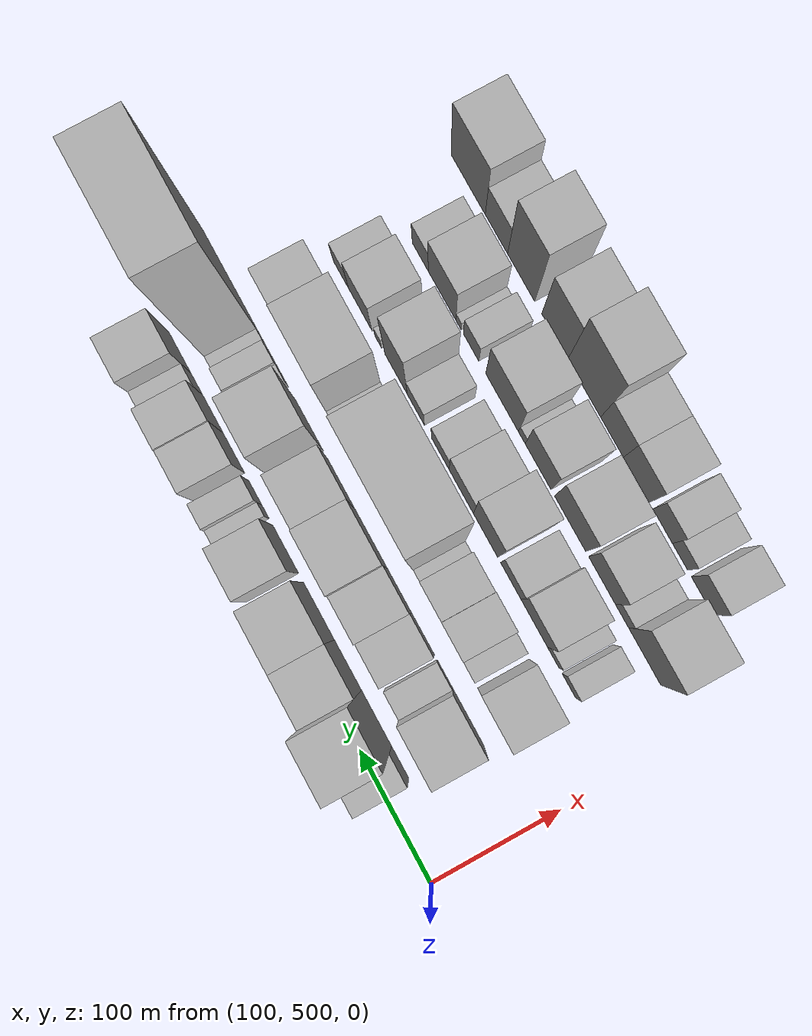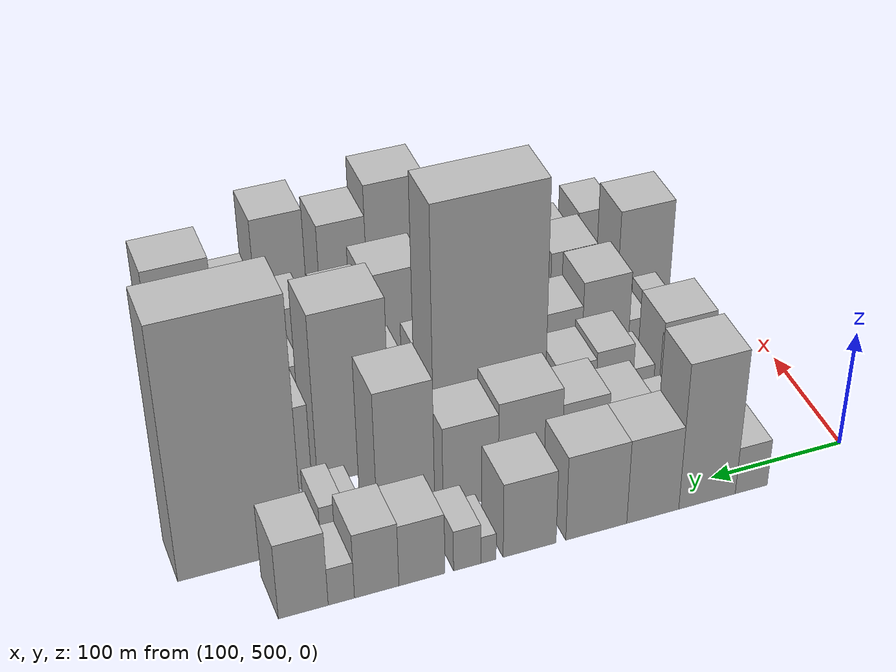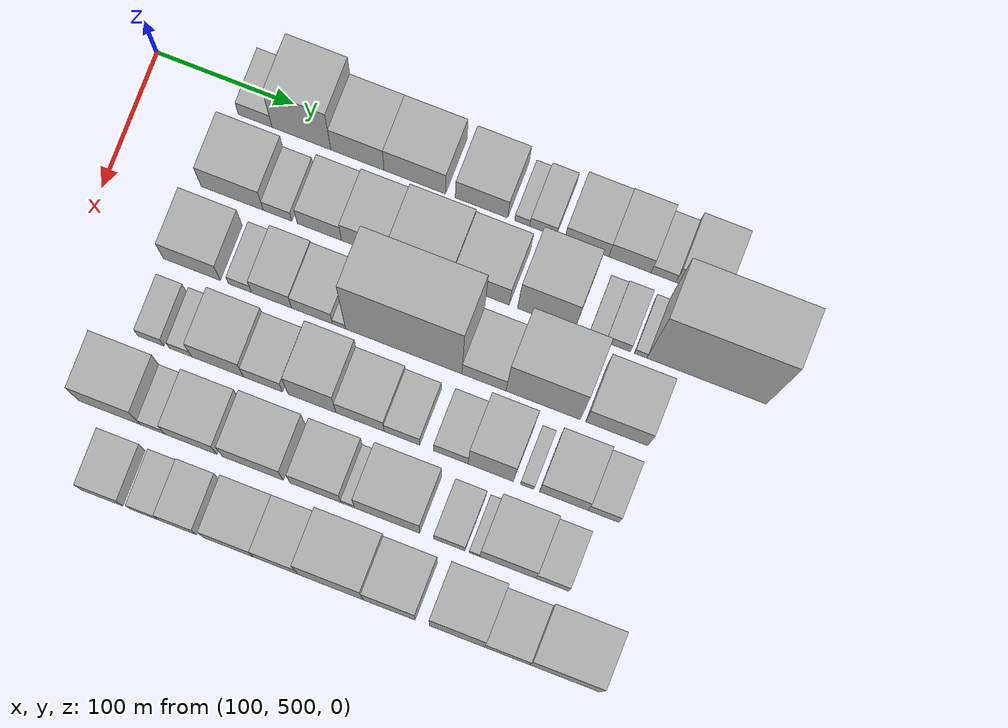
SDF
<sdf version="1.6">
 <world name="default">
  <model name="building_44">
   <static>1</static>
   <pose>100.0000 579.7572 0 0.000000 0.000000 0.000000</pose>
   <link name="link">
    <pose>0 0 21.00 0 0 0</pose>
    <collision name="collision"><geometry><box><size>40.0000 24.4732 42.0000</size></box></geometry></collision>
    <visual name="visual">
     <cast_shadows>0</cast_shadows>
     <geometry><box><size>40.0000 24.4732 42.0000</size></box></geometry>
     <material>
      <script>
       <uri>model://HANNAS_wall/materials/scripts</uri>
       <uri>model://HANNAS_wall/materials/textures</uri>
       <name>vrc/HANNAS_wall</name>
      </script>
     </material>
    </visual>
   </link>
  </model>
  <model name="building_45">
   <static>1</static>
   <pose>100.0000 613.3735 0 0.000000 0.000000 0.000000</pose>
   <link name="link">
    <pose>0 0 64.50 0 0 0</pose>
    <collision name="collision"><geometry><box><size>40.0000 42.7593 129.0000</size></box></geometry></collision>
    <visual name="visual">
     <cast_shadows>0</cast_shadows>
     <geometry><box><size>40.0000 42.7593 129.0000</size></box></geometry>
     <material>
      <script>
       <uri>model://HANNAS_wall/materials/scripts</uri>
       <uri>model://HANNAS_wall/materials/textures</uri>
       <name>vrc/HANNAS_wall</name>
      </script>
     </material>
    </visual>
   </link>
  </model>
  <model name="building_46">
   <static>1</static>
   <pose>100.0000 654.0883 0 0.000000 0.000000 0.000000</pose>
   <link name="link">
    <pose>0 0 37.50 0 0 0</pose>
    <collision name="collision"><geometry><box><size>40.0000 38.6704 75.0000</size></box></geometry></collision>
    <visual name="visual">
     <cast_shadows>0</cast_shadows>
     <geometry><box><size>40.0000 38.6704 75.0000</size></box></geometry>
     <material>
      <script>
       <uri>model://HANNAS_wall/materials/scripts</uri>
       <uri>model://HANNAS_wall/materials/textures</uri>
       <name>vrc/HANNAS_wall</name>
      </script>
     </material>
    </visual>
   </link>
  </model>
  <model name="building_47">
   <static>1</static>
   <pose>100.0000 695.7352 0 0.000000 0.000000 0.000000</pose>
   <link name="link">
    <pose>0 0 37.50 0 0 0</pose>
    <collision name="collision"><geometry><box><size>40.0000 44.6233 75.0000</size></box></geometry></collision>
    <visual name="visual">
     <cast_shadows>0</cast_shadows>
     <geometry><box><size>40.0000 44.6233 75.0000</size></box></geometry>
     <material>
      <script>
       <uri>model://HANNAS_wall/materials/scripts</uri>
       <uri>model://HANNAS_wall/materials/textures</uri>
       <name>vrc/HANNAS_wall</name>
      </script>
     </material>
    </visual>
   </link>
  </model>
  <model name="building_48">
   <static>1</static>
   <pose>100.0000 744.0485 0 0.000000 0.000000 0.000000</pose>
   <link name="link">
    <pose>0 0 33.00 0 0 0</pose>
    <collision name="collision"><geometry><box><size>40.0000 38.0034 66.0000</size></box></geometry></collision>
    <visual name="visual">
     <cast_shadows>0</cast_shadows>
     <geometry><box><size>40.0000 38.0034 66.0000</size></box></geometry>
     <material>
      <script>
       <uri>model://HANNAS_wall/materials/scripts</uri>
       <uri>model://HANNAS_wall/materials/textures</uri>
       <name>vrc/HANNAS_wall</name>
      </script>
     </material>
    </visual>
   </link>
  </model>
  <model name="building_49">
   <static>1</static>
   <pose>100.0000 773.5010 0 0.000000 0.000000 0.000000</pose>
   <link name="link">
    <pose>0 0 12.00 0 0 0</pose>
    <collision name="collision"><geometry><box><size>40.0000 10.9015 24.0000</size></box></geometry></collision>
    <visual name="visual">
     <cast_shadows>0</cast_shadows>
     <geometry><box><size>40.0000 10.9015 24.0000</size></box></geometry>
     <material>
      <script>
       <uri>model://HANNAS_wall/materials/scripts</uri>
       <uri>model://HANNAS_wall/materials/textures</uri>
       <name>vrc/HANNAS_wall</name>
      </script>
     </material>
    </visual>
   </link>
  </model>
  <model name="building_50">
   <static>1</static>
   <pose>100.0000 788.5138 0 0.000000 0.000000 0.000000</pose>
   <link name="link">
    <pose>0 0 18.00 0 0 0</pose>
    <collision name="collision"><geometry><box><size>40.0000 19.1242 36.0000</size></box></geometry></collision>
    <visual name="visual">
     <cast_shadows>0</cast_shadows>
     <geometry><box><size>40.0000 19.1242 36.0000</size></box></geometry>
     <material>
      <script>
       <uri>model://HANNAS_wall/materials/scripts</uri>
       <uri>model://HANNAS_wall/materials/textures</uri>
       <name>vrc/HANNAS_wall</name>
      </script>
     </material>
    </visual>
   </link>
  </model>
  <model name="building_51">
   <static>1</static>
   <pose>100.0000 820.0976 0 0.000000 0.000000 0.000000</pose>
   <link name="link">
    <pose>0 0 27.00 0 0 0</pose>
    <collision name="collision"><geometry><box><size>40.0000 32.0433 54.0000</size></box></geometry></collision>
    <visual name="visual">
     <cast_shadows>0</cast_shadows>
     <geometry><box><size>40.0000 32.0433 54.0000</size></box></geometry>
     <material>
      <script>
       <uri>model://HANNAS_wall/materials/scripts</uri>
       <uri>model://HANNAS_wall/materials/textures</uri>
       <name>vrc/HANNAS_wall</name>
      </script>
     </material>
    </visual>
   </link>
  </model>
  <model name="building_52">
   <static>1</static>
   <pose>100.0000 851.3586 0 0.000000 0.000000 0.000000</pose>
   <link name="link">
    <pose>0 0 28.50 0 0 0</pose>
    <collision name="collision"><geometry><box><size>40.0000 30.4788 57.0000</size></box></geometry></collision>
    <visual name="visual">
     <cast_shadows>0</cast_shadows>
     <geometry><box><size>40.0000 30.4788 57.0000</size></box></geometry>
     <material>
      <script>
       <uri>model://HANNAS_wall/materials/scripts</uri>
       <uri>model://HANNAS_wall/materials/textures</uri>
       <name>vrc/HANNAS_wall</name>
      </script>
     </material>
    </visual>
   </link>
  </model>
  <model name="building_53">
   <static>1</static>
   <pose>100.0000 875.5450 0 0.000000 0.000000 0.000000</pose>
   <link name="link">
    <pose>0 0 16.50 0 0 0</pose>
    <collision name="collision"><geometry><box><size>40.0000 17.8940 33.0000</size></box></geometry></collision>
    <visual name="visual">
     <cast_shadows>0</cast_shadows>
     <geometry><box><size>40.0000 17.8940 33.0000</size></box></geometry>
     <material>
      <script>
       <uri>model://HANNAS_wall/materials/scripts</uri>
       <uri>model://HANNAS_wall/materials/textures</uri>
       <name>vrc/HANNAS_wall</name>
      </script>
     </material>
    </visual>
   </link>
  </model>
  <model name="building_54">
   <static>1</static>
   <pose>100.0000 901.2601 0 0.000000 0.000000 0.000000</pose>
   <link name="link">
    <pose>0 0 33.00 0 0 0</pose>
    <collision name="collision"><geometry><box><size>40.0000 33.5363 66.0000</size></box></geometry></collision>
    <visual name="visual">
     <cast_shadows>0</cast_shadows>
     <geometry><box><size>40.0000 33.5363 66.0000</size></box></geometry>
     <material>
      <script>
       <uri>model://HANNAS_wall/materials/scripts</uri>
       <uri>model://HANNAS_wall/materials/textures</uri>
       <name>vrc/HANNAS_wall</name>
      </script>
     </material>
    </visual>
   </link>
  </model>
  <model name="building_93">
   <static>1</static>
   <pose>155.0000 584.7493 0 0.000000 0.000000 0.000000</pose>
   <link name="link">
    <pose>0 0 37.50 0 0 0</pose>
    <collision name="collision"><geometry><box><size>40.0000 44.9538 75.0000</size></box></geometry></collision>
    <visual name="visual">
     <cast_shadows>0</cast_shadows>
     <geometry><box><size>40.0000 44.9538 75.0000</size></box></geometry>
     <material>
      <script>
       <uri>model://HANNAS_wall/materials/scripts</uri>
       <uri>model://HANNAS_wall/materials/textures</uri>
       <name>vrc/HANNAS_wall</name>
      </script>
     </material>
    </visual>
   </link>
  </model>
  <model name="building_94">
   <static>1</static>
   <pose>155.0000 617.6124 0 0.000000 0.000000 0.000000</pose>
   <link name="link">
    <pose>0 0 18.00 0 0 0</pose>
    <collision name="collision"><geometry><box><size>40.0000 20.7725 36.0000</size></box></geometry></collision>
    <visual name="visual">
     <cast_shadows>0</cast_shadows>
     <geometry><box><size>40.0000 20.7725 36.0000</size></box></geometry>
     <material>
      <script>
       <uri>model://HANNAS_wall/materials/scripts</uri>
       <uri>model://HANNAS_wall/materials/textures</uri>
       <name>vrc/HANNAS_wall</name>
      </script>
     </material>
    </visual>
   </link>
  </model>
  <model name="building_95">
   <static>1</static>
   <pose>155.0000 648.0194 0 0.000000 0.000000 0.000000</pose>
   <link name="link">
    <pose>0 0 28.50 0 0 0</pose>
    <collision name="collision"><geometry><box><size>40.0000 32.0415 57.0000</size></box></geometry></collision>
    <visual name="visual">
     <cast_shadows>0</cast_shadows>
     <geometry><box><size>40.0000 32.0415 57.0000</size></box></geometry>
     <material>
      <script>
       <uri>model://HANNAS_wall/materials/scripts</uri>
       <uri>model://HANNAS_wall/materials/textures</uri>
       <name>vrc/HANNAS_wall</name>
      </script>
     </material>
    </visual>
   </link>
  </model>
  <model name="building_96">
   <static>1</static>
   <pose>155.0000 681.2914 0 0.000000 0.000000 0.000000</pose>
   <link name="link">
    <pose>0 0 34.50 0 0 0</pose>
    <collision name="collision"><geometry><box><size>40.0000 34.5025 69.0000</size></box></geometry></collision>
    <visual name="visual">
     <cast_shadows>0</cast_shadows>
     <geometry><box><size>40.0000 34.5025 69.0000</size></box></geometry>
     <material>
      <script>
       <uri>model://HANNAS_wall/materials/scripts</uri>
       <uri>model://HANNAS_wall/materials/textures</uri>
       <name>vrc/HANNAS_wall</name>
      </script>
     </material>
    </visual>
   </link>
  </model>
  <model name="building_97">
   <static>1</static>
   <pose>155.0000 721.8726 0 0.000000 0.000000 0.000000</pose>
   <link name="link">
    <pose>0 0 42.00 0 0 0</pose>
    <collision name="collision"><geometry><box><size>40.0000 46.6599 84.0000</size></box></geometry></collision>
    <visual name="visual">
     <cast_shadows>0</cast_shadows>
     <geometry><box><size>40.0000 46.6599 84.0000</size></box></geometry>
     <material>
      <script>
       <uri>model://HANNAS_wall/materials/scripts</uri>
       <uri>model://HANNAS_wall/materials/textures</uri>
       <name>vrc/HANNAS_wall</name>
      </script>
     </material>
    </visual>
   </link>
  </model>
  <model name="building_98">
   <static>1</static>
   <pose>155.0000 765.2753 0 0.000000 0.000000 0.000000</pose>
   <link name="link">
    <pose>0 0 37.50 0 0 0</pose>
    <collision name="collision"><geometry><box><size>40.0000 40.1456 75.0000</size></box></geometry></collision>
    <visual name="visual">
     <cast_shadows>0</cast_shadows>
     <geometry><box><size>40.0000 40.1456 75.0000</size></box></geometry>
     <material>
      <script>
       <uri>model://HANNAS_wall/materials/scripts</uri>
       <uri>model://HANNAS_wall/materials/textures</uri>
       <name>vrc/HANNAS_wall</name>
      </script>
     </material>
    </visual>
   </link>
  </model>
  <model name="building_99">
   <static>1</static>
   <pose>155.0000 811.8887 0 0.000000 0.000000 0.000000</pose>
   <link name="link">
    <pose>0 0 60.00 0 0 0</pose>
    <collision name="collision"><geometry><box><size>40.0000 41.0811 120.0000</size></box></geometry></collision>
    <visual name="visual">
     <cast_shadows>0</cast_shadows>
     <geometry><box><size>40.0000 41.0811 120.0000</size></box></geometry>
     <material>
      <script>
       <uri>model://HANNAS_wall/materials/scripts</uri>
       <uri>model://HANNAS_wall/materials/textures</uri>
       <name>vrc/HANNAS_wall</name>
      </script>
     </material>
    </visual>
   </link>
  </model>
  <model name="building_100">
   <static>1</static>
   <pose>155.0000 848.6807 0 0.000000 0.000000 0.000000</pose>
   <link name="link">
    <pose>0 0 13.50 0 0 0</pose>
    <collision name="collision"><geometry><box><size>40.0000 12.5030 27.0000</size></box></geometry></collision>
    <visual name="visual">
     <cast_shadows>0</cast_shadows>
     <geometry><box><size>40.0000 12.5030 27.0000</size></box></geometry>
     <material>
      <script>
       <uri>model://HANNAS_wall/materials/scripts</uri>
       <uri>model://HANNAS_wall/materials/textures</uri>
       <name>vrc/HANNAS_wall</name>
      </script>
     </material>
    </visual>
   </link>
  </model>
  <model name="building_101">
   <static>1</static>
   <pose>155.0000 863.7509 0 0.000000 0.000000 0.000000</pose>
   <link name="link">
    <pose>0 0 16.50 0 0 0</pose>
    <collision name="collision"><geometry><box><size>40.0000 17.6373 33.0000</size></box></geometry></collision>
    <visual name="visual">
     <cast_shadows>0</cast_shadows>
     <geometry><box><size>40.0000 17.6373 33.0000</size></box></geometry>
     <material>
      <script>
       <uri>model://HANNAS_wall/materials/scripts</uri>
       <uri>model://HANNAS_wall/materials/textures</uri>
       <name>vrc/HANNAS_wall</name>
      </script>
     </material>
    </visual>
   </link>
  </model>
  <model name="building_102">
   <static>1</static>
   <pose>155.0000 879.9991 0 0.000000 0.000000 0.000000</pose>
   <link name="link">
    <pose>0 0 10.50 0 0 0</pose>
    <collision name="collision"><geometry><box><size>40.0000 8.8590 21.0000</size></box></geometry></collision>
    <visual name="visual">
     <cast_shadows>0</cast_shadows>
     <geometry><box><size>40.0000 8.8590 21.0000</size></box></geometry>
     <material>
      <script>
       <uri>model://HANNAS_wall/materials/scripts</uri>
       <uri>model://HANNAS_wall/materials/textures</uri>
       <name>vrc/HANNAS_wall</name>
      </script>
     </material>
    </visual>
   </link>
  </model>
  <model name="building_103">
   <static>1</static>
   <pose>155.0000 927.4068 0 0.000000 0.000000 0.000000</pose>
   <link name="link">
    <pose>0 0 108.00 0 0 0</pose>
    <collision name="collision"><geometry><box><size>40.0000 85.9563 216.0000</size></box></geometry></collision>
    <visual name="visual">
     <cast_shadows>0</cast_shadows>
     <geometry><box><size>40.0000 85.9563 216.0000</size></box></geometry>
     <material>
      <script>
       <uri>model://HANNAS_wall/materials/scripts</uri>
       <uri>model://HANNAS_wall/materials/textures</uri>
       <name>vrc/HANNAS_wall</name>
      </script>
     </material>
    </visual>
   </link>
  </model>
  <model name="building_146">
   <static>1</static>
   <pose>210.0000 577.4167 0 0.000000 0.000000 0.000000</pose>
   <link name="link">
    <pose>0 0 34.50 0 0 0</pose>
    <collision name="collision"><geometry><box><size>40.0000 41.1801 69.0000</size></box></geometry></collision>
    <visual name="visual">
     <cast_shadows>0</cast_shadows>
     <geometry><box><size>40.0000 41.1801 69.0000</size></box></geometry>
     <material>
      <script>
       <uri>model://HANNAS_wall/materials/scripts</uri>
       <uri>model://HANNAS_wall/materials/textures</uri>
       <name>vrc/HANNAS_wall</name>
      </script>
     </material>
    </visual>
   </link>
  </model>
  <model name="building_147">
   <static>1</static>
   <pose>210.0000 612.3265 0 0.000000 0.000000 0.000000</pose>
   <link name="link">
    <pose>0 0 16.50 0 0 0</pose>
    <collision name="collision"><geometry><box><size>40.0000 16.6396 33.0000</size></box></geometry></collision>
    <visual name="visual">
     <cast_shadows>0</cast_shadows>
     <geometry><box><size>40.0000 16.6396 33.0000</size></box></geometry>
     <material>
      <script>
       <uri>model://HANNAS_wall/materials/scripts</uri>
       <uri>model://HANNAS_wall/materials/textures</uri>
       <name>vrc/HANNAS_wall</name>
      </script>
     </material>
    </visual>
   </link>
  </model>
  <model name="building_148">
   <static>1</static>
   <pose>210.0000 635.0817 0 0.000000 0.000000 0.000000</pose>
   <link name="link">
    <pose>0 0 28.50 0 0 0</pose>
    <collision name="collision"><geometry><box><size>40.0000 28.8708 57.0000</size></box></geometry></collision>
    <visual name="visual">
     <cast_shadows>0</cast_shadows>
     <geometry><box><size>40.0000 28.8708 57.0000</size></box></geometry>
     <material>
      <script>
       <uri>model://HANNAS_wall/materials/scripts</uri>
       <uri>model://HANNAS_wall/materials/textures</uri>
       <name>vrc/HANNAS_wall</name>
      </script>
     </material>
    </visual>
   </link>
  </model>
  <model name="building_149">
   <static>1</static>
   <pose>210.0000 664.3646 0 0.000000 0.000000 0.000000</pose>
   <link name="link">
    <pose>0 0 25.50 0 0 0</pose>
    <collision name="collision"><geometry><box><size>40.0000 29.6950 51.0000</size></box></geometry></collision>
    <visual name="visual">
     <cast_shadows>0</cast_shadows>
     <geometry><box><size>40.0000 29.6950 51.0000</size></box></geometry>
     <material>
      <script>
       <uri>model://HANNAS_wall/materials/scripts</uri>
       <uri>model://HANNAS_wall/materials/textures</uri>
       <name>vrc/HANNAS_wall</name>
      </script>
     </material>
    </visual>
   </link>
  </model>
  <model name="building_150">
   <static>1</static>
   <pose>210.0000 683.8806 0 0.000000 0.000000 0.000000</pose>
   <link name="link">
    <pose>0 0 10.50 0 0 0</pose>
    <collision name="collision"><geometry><box><size>40.0000 9.3370 21.0000</size></box></geometry></collision>
    <visual name="visual">
     <cast_shadows>0</cast_shadows>
     <geometry><box><size>40.0000 9.3370 21.0000</size></box></geometry>
     <material>
      <script>
       <uri>model://HANNAS_wall/materials/scripts</uri>
       <uri>model://HANNAS_wall/materials/textures</uri>
       <name>vrc/HANNAS_wall</name>
      </script>
     </material>
    </visual>
   </link>
  </model>
  <model name="building_151">
   <static>1</static>
   <pose>210.0000 730.4552 0 0.000000 0.000000 0.000000</pose>
   <link name="link">
    <pose>0 0 108.00 0 0 0</pose>
    <collision name="collision"><geometry><box><size>40.0000 83.8121 216.0000</size></box></geometry></collision>
    <visual name="visual">
     <cast_shadows>0</cast_shadows>
     <geometry><box><size>40.0000 83.8121 216.0000</size></box></geometry>
     <material>
      <script>
       <uri>model://HANNAS_wall/materials/scripts</uri>
       <uri>model://HANNAS_wall/materials/textures</uri>
       <name>vrc/HANNAS_wall</name>
      </script>
     </material>
    </visual>
   </link>
  </model>
  <model name="building_152">
   <static>1</static>
   <pose>210.0000 788.2981 0 0.000000 0.000000 0.000000</pose>
   <link name="link">
    <pose>0 0 28.50 0 0 0</pose>
    <collision name="collision"><geometry><box><size>40.0000 31.8737 57.0000</size></box></geometry></collision>
    <visual name="visual">
     <cast_shadows>0</cast_shadows>
     <geometry><box><size>40.0000 31.8737 57.0000</size></box></geometry>
     <material>
      <script>
       <uri>model://HANNAS_wall/materials/scripts</uri>
       <uri>model://HANNAS_wall/materials/textures</uri>
       <name>vrc/HANNAS_wall</name>
      </script>
     </material>
    </visual>
   </link>
  </model>
  <model name="building_153">
   <static>1</static>
   <pose>210.0000 830.8667 0 0.000000 0.000000 0.000000</pose>
   <link name="link">
    <pose>0 0 75.00 0 0 0</pose>
    <collision name="collision"><geometry><box><size>40.0000 53.2636 150.0000</size></box></geometry></collision>
    <visual name="visual">
     <cast_shadows>0</cast_shadows>
     <geometry><box><size>40.0000 53.2636 150.0000</size></box></geometry>
     <material>
      <script>
       <uri>model://HANNAS_wall/materials/scripts</uri>
       <uri>model://HANNAS_wall/materials/textures</uri>
       <name>vrc/HANNAS_wall</name>
      </script>
     </material>
    </visual>
   </link>
  </model>
  <model name="building_154">
   <static>1</static>
   <pose>210.0000 883.8740 0 0.000000 0.000000 0.000000</pose>
   <link name="link">
    <pose>0 0 37.50 0 0 0</pose>
    <collision name="collision"><geometry><box><size>40.0000 44.7510 75.0000</size></box></geometry></collision>
    <visual name="visual">
     <cast_shadows>0</cast_shadows>
     <geometry><box><size>40.0000 44.7510 75.0000</size></box></geometry>
     <material>
      <script>
       <uri>model://HANNAS_wall/materials/scripts</uri>
       <uri>model://HANNAS_wall/materials/textures</uri>
       <name>vrc/HANNAS_wall</name>
      </script>
     </material>
    </visual>
   </link>
  </model>
  <model name="building_200">
   <static>1</static>
   <pose>265.0000 569.6664 0 0.000000 0.000000 0.000000</pose>
   <link name="link">
    <pose>0 0 18.00 0 0 0</pose>
    <collision name="collision"><geometry><box><size>40.0000 18.5887 36.0000</size></box></geometry></collision>
    <visual name="visual">
     <cast_shadows>0</cast_shadows>
     <geometry><box><size>40.0000 18.5887 36.0000</size></box></geometry>
     <material>
      <script>
       <uri>model://HANNAS_wall/materials/scripts</uri>
       <uri>model://HANNAS_wall/materials/textures</uri>
       <name>vrc/HANNAS_wall</name>
      </script>
     </material>
    </visual>
   </link>
  </model>
  <model name="building_201">
   <static>1</static>
   <pose>265.0000 591.0083 0 0.000000 0.000000 0.000000</pose>
   <link name="link">
    <pose>0 0 15.00 0 0 0</pose>
    <collision name="collision"><geometry><box><size>40.0000 16.0953 30.0000</size></box></geometry></collision>
    <visual name="visual">
     <cast_shadows>0</cast_shadows>
     <geometry><box><size>40.0000 16.0953 30.0000</size></box></geometry>
     <material>
      <script>
       <uri>model://HANNAS_wall/materials/scripts</uri>
       <uri>model://HANNAS_wall/materials/textures</uri>
       <name>vrc/HANNAS_wall</name>
      </script>
     </material>
    </visual>
   </link>
  </model>
  <model name="building_202">
   <static>1</static>
   <pose>265.0000 617.8726 0 0.000000 0.000000 0.000000</pose>
   <link name="link">
    <pose>0 0 37.50 0 0 0</pose>
    <collision name="collision"><geometry><box><size>40.0000 37.6332 75.0000</size></box></geometry></collision>
    <visual name="visual">
     <cast_shadows>0</cast_shadows>
     <geometry><box><size>40.0000 37.6332 75.0000</size></box></geometry>
     <material>
      <script>
       <uri>model://HANNAS_wall/materials/scripts</uri>
       <uri>model://HANNAS_wall/materials/textures</uri>
       <name>vrc/HANNAS_wall</name>
      </script>
     </material>
    </visual>
   </link>
  </model>
  <model name="building_203">
   <static>1</static>
   <pose>265.0000 650.7920 0 0.000000 0.000000 0.000000</pose>
   <link name="link">
    <pose>0 0 27.00 0 0 0</pose>
    <collision name="collision"><geometry><box><size>40.0000 28.2056 54.0000</size></box></geometry></collision>
    <visual name="visual">
     <cast_shadows>0</cast_shadows>
     <geometry><box><size>40.0000 28.2056 54.0000</size></box></geometry>
     <material>
      <script>
       <uri>model://HANNAS_wall/materials/scripts</uri>
       <uri>model://HANNAS_wall/materials/textures</uri>
       <name>vrc/HANNAS_wall</name>
      </script>
     </material>
    </visual>
   </link>
  </model>
  <model name="building_204">
   <static>1</static>
   <pose>265.0000 686.0796 0 0.000000 0.000000 0.000000</pose>
   <link name="link">
    <pose>0 0 51.00 0 0 0</pose>
    <collision name="collision"><geometry><box><size>40.0000 34.3698 102.0000</size></box></geometry></collision>
    <visual name="visual">
     <cast_shadows>0</cast_shadows>
     <geometry><box><size>40.0000 34.3698 102.0000</size></box></geometry>
     <material>
      <script>
       <uri>model://HANNAS_wall/materials/scripts</uri>
       <uri>model://HANNAS_wall/materials/textures</uri>
       <name>vrc/HANNAS_wall</name>
      </script>
     </material>
    </visual>
   </link>
  </model>
  <model name="building_205">
   <static>1</static>
   <pose>265.0000 720.5995 0 0.000000 0.000000 0.000000</pose>
   <link name="link">
    <pose>0 0 31.50 0 0 0</pose>
    <collision name="collision"><geometry><box><size>40.0000 34.6701 63.0000</size></box></geometry></collision>
    <visual name="visual">
     <cast_shadows>0</cast_shadows>
     <geometry><box><size>40.0000 34.6701 63.0000</size></box></geometry>
     <material>
      <script>
       <uri>model://HANNAS_wall/materials/scripts</uri>
       <uri>model://HANNAS_wall/materials/textures</uri>
       <name>vrc/HANNAS_wall</name>
      </script>
     </material>
    </visual>
   </link>
  </model>
  <model name="building_206">
   <static>1</static>
   <pose>265.0000 750.7077 0 0.000000 0.000000 0.000000</pose>
   <link name="link">
    <pose>0 0 22.50 0 0 0</pose>
    <collision name="collision"><geometry><box><size>40.0000 25.5463 45.0000</size></box></geometry></collision>
    <visual name="visual">
     <cast_shadows>0</cast_shadows>
     <geometry><box><size>40.0000 25.5463 45.0000</size></box></geometry>
     <material>
      <script>
       <uri>model://HANNAS_wall/materials/scripts</uri>
       <uri>model://HANNAS_wall/materials/textures</uri>
       <name>vrc/HANNAS_wall</name>
      </script>
     </material>
    </visual>
   </link>
  </model>
  <model name="building_207">
   <static>1</static>
   <pose>265.0000 785.8548 0 0.000000 0.000000 0.000000</pose>
   <link name="link">
    <pose>0 0 22.50 0 0 0</pose>
    <collision name="collision"><geometry><box><size>40.0000 24.7479 45.0000</size></box></geometry></collision>
    <visual name="visual">
     <cast_shadows>0</cast_shadows>
     <geometry><box><size>40.0000 24.7479 45.0000</size></box></geometry>
     <material>
      <script>
       <uri>model://HANNAS_wall/materials/scripts</uri>
       <uri>model://HANNAS_wall/materials/textures</uri>
       <name>vrc/HANNAS_wall</name>
      </script>
     </material>
    </visual>
   </link>
  </model>
  <model name="building_208">
   <static>1</static>
   <pose>265.0000 814.4670 0 0.000000 0.000000 0.000000</pose>
   <link name="link">
    <pose>0 0 54.00 0 0 0</pose>
    <collision name="collision"><geometry><box><size>40.0000 32.4763 108.0000</size></box></geometry></collision>
    <visual name="visual">
     <cast_shadows>0</cast_shadows>
     <geometry><box><size>40.0000 32.4763 108.0000</size></box></geometry>
     <material>
      <script>
       <uri>model://HANNAS_wall/materials/scripts</uri>
       <uri>model://HANNAS_wall/materials/textures</uri>
       <name>vrc/HANNAS_wall</name>
      </script>
     </material>
    </visual>
   </link>
  </model>
  <model name="building_209">
   <static>1</static>
   <pose>265.0000 840.5808 0 0.000000 0.000000 0.000000</pose>
   <link name="link">
    <pose>0 0 12.00 0 0 0</pose>
    <collision name="collision"><geometry><box><size>40.0000 9.7515 24.0000</size></box></geometry></collision>
    <visual name="visual">
     <cast_shadows>0</cast_shadows>
     <geometry><box><size>40.0000 9.7515 24.0000</size></box></geometry>
     <material>
      <script>
       <uri>model://HANNAS_wall/materials/scripts</uri>
       <uri>model://HANNAS_wall/materials/textures</uri>
       <name>vrc/HANNAS_wall</name>
      </script>
     </material>
    </visual>
   </link>
  </model>
  <model name="building_210">
   <static>1</static>
   <pose>265.0000 866.8345 0 0.000000 0.000000 0.000000</pose>
   <link name="link">
    <pose>0 0 31.50 0 0 0</pose>
    <collision name="collision"><geometry><box><size>40.0000 34.7559 63.0000</size></box></geometry></collision>
    <visual name="visual">
     <cast_shadows>0</cast_shadows>
     <geometry><box><size>40.0000 34.7559 63.0000</size></box></geometry>
     <material>
      <script>
       <uri>model://HANNAS_wall/materials/scripts</uri>
       <uri>model://HANNAS_wall/materials/textures</uri>
       <name>vrc/HANNAS_wall</name>
      </script>
     </material>
    </visual>
   </link>
  </model>
  <model name="building_211">
   <static>1</static>
   <pose>265.0000 895.3575 0 0.000000 0.000000 0.000000</pose>
   <link name="link">
    <pose>0 0 21.00 0 0 0</pose>
    <collision name="collision"><geometry><box><size>40.0000 22.2901 42.0000</size></box></geometry></collision>
    <visual name="visual">
     <cast_shadows>0</cast_shadows>
     <geometry><box><size>40.0000 22.2901 42.0000</size></box></geometry>
     <material>
      <script>
       <uri>model://HANNAS_wall/materials/scripts</uri>
       <uri>model://HANNAS_wall/materials/textures</uri>
       <name>vrc/HANNAS_wall</name>
      </script>
     </material>
    </visual>
   </link>
  </model>
  <model name="building_253">
   <static>1</static>
   <pose>320.0000 561.7538 0 0.000000 0.000000 0.000000</pose>
   <link name="link">
    <pose>0 0 43.50 0 0 0</pose>
    <collision name="collision"><geometry><box><size>40.0000 44.2173 87.0000</size></box></geometry></collision>
    <visual name="visual">
     <cast_shadows>0</cast_shadows>
     <geometry><box><size>40.0000 44.2173 87.0000</size></box></geometry>
     <material>
      <script>
       <uri>model://HANNAS_wall/materials/scripts</uri>
       <uri>model://HANNAS_wall/materials/textures</uri>
       <name>vrc/HANNAS_wall</name>
      </script>
     </material>
    </visual>
   </link>
  </model>
  <model name="building_254">
   <static>1</static>
   <pose>320.0000 592.8528 0 0.000000 0.000000 0.000000</pose>
   <link name="link">
    <pose>0 0 15.00 0 0 0</pose>
    <collision name="collision"><geometry><box><size>40.0000 17.9807 30.0000</size></box></geometry></collision>
    <visual name="visual">
     <cast_shadows>0</cast_shadows>
     <geometry><box><size>40.0000 17.9807 30.0000</size></box></geometry>
     <material>
      <script>
       <uri>model://HANNAS_wall/materials/scripts</uri>
       <uri>model://HANNAS_wall/materials/textures</uri>
       <name>vrc/HANNAS_wall</name>
      </script>
     </material>
    </visual>
   </link>
  </model>
  <model name="building_255">
   <static>1</static>
   <pose>320.0000 620.5487 0 0.000000 0.000000 0.000000</pose>
   <link name="link">
    <pose>0 0 31.50 0 0 0</pose>
    <collision name="collision"><geometry><box><size>40.0000 37.4110 63.0000</size></box></geometry></collision>
    <visual name="visual">
     <cast_shadows>0</cast_shadows>
     <geometry><box><size>40.0000 37.4110 63.0000</size></box></geometry>
     <material>
      <script>
       <uri>model://HANNAS_wall/materials/scripts</uri>
       <uri>model://HANNAS_wall/materials/textures</uri>
       <name>vrc/HANNAS_wall</name>
      </script>
     </material>
    </visual>
   </link>
  </model>
  <model name="building_256">
   <static>1</static>
   <pose>320.0000 665.1189 0 0.000000 0.000000 0.000000</pose>
   <link name="link">
    <pose>0 0 37.50 0 0 0</pose>
    <collision name="collision"><geometry><box><size>40.0000 43.7295 75.0000</size></box></geometry></collision>
    <visual name="visual">
     <cast_shadows>0</cast_shadows>
     <geometry><box><size>40.0000 43.7295 75.0000</size></box></geometry>
     <material>
      <script>
       <uri>model://HANNAS_wall/materials/scripts</uri>
       <uri>model://HANNAS_wall/materials/textures</uri>
       <name>vrc/HANNAS_wall</name>
      </script>
     </material>
    </visual>
   </link>
  </model>
  <model name="building_257">
   <static>1</static>
   <pose>320.0000 710.2280 0 0.000000 0.000000 0.000000</pose>
   <link name="link">
    <pose>0 0 34.50 0 0 0</pose>
    <collision name="collision"><geometry><box><size>40.0000 36.4887 69.0000</size></box></geometry></collision>
    <visual name="visual">
     <cast_shadows>0</cast_shadows>
     <geometry><box><size>40.0000 36.4887 69.0000</size></box></geometry>
     <material>
      <script>
       <uri>model://HANNAS_wall/materials/scripts</uri>
       <uri>model://HANNAS_wall/materials/textures</uri>
       <name>vrc/HANNAS_wall</name>
      </script>
     </material>
    </visual>
   </link>
  </model>
  <model name="building_258">
   <static>1</static>
   <pose>320.0000 733.3542 0 0.000000 0.000000 0.000000</pose>
   <link name="link">
    <pose>0 0 10.50 0 0 0</pose>
    <collision name="collision"><geometry><box><size>40.0000 9.7637 21.0000</size></box></geometry></collision>
    <visual name="visual">
     <cast_shadows>0</cast_shadows>
     <geometry><box><size>40.0000 9.7637 21.0000</size></box></geometry>
     <material>
      <script>
       <uri>model://HANNAS_wall/materials/scripts</uri>
       <uri>model://HANNAS_wall/materials/textures</uri>
       <name>vrc/HANNAS_wall</name>
      </script>
     </material>
    </visual>
   </link>
  </model>
  <model name="building_259">
   <static>1</static>
   <pose>320.0000 761.5676 0 0.000000 0.000000 0.000000</pose>
   <link name="link">
    <pose>0 0 40.50 0 0 0</pose>
    <collision name="collision"><geometry><box><size>40.0000 46.6631 81.0000</size></box></geometry></collision>
    <visual name="visual">
     <cast_shadows>0</cast_shadows>
     <geometry><box><size>40.0000 46.6631 81.0000</size></box></geometry>
     <material>
      <script>
       <uri>model://HANNAS_wall/materials/scripts</uri>
       <uri>model://HANNAS_wall/materials/textures</uri>
       <name>vrc/HANNAS_wall</name>
      </script>
     </material>
    </visual>
   </link>
  </model>
  <model name="building_260">
   <static>1</static>
   <pose>320.0000 806.0763 0 0.000000 0.000000 0.000000</pose>
   <link name="link">
    <pose>0 0 19.50 0 0 0</pose>
    <collision name="collision"><geometry><box><size>40.0000 22.3543 39.0000</size></box></geometry></collision>
    <visual name="visual">
     <cast_shadows>0</cast_shadows>
     <geometry><box><size>40.0000 22.3543 39.0000</size></box></geometry>
     <material>
      <script>
       <uri>model://HANNAS_wall/materials/scripts</uri>
       <uri>model://HANNAS_wall/materials/textures</uri>
       <name>vrc/HANNAS_wall</name>
      </script>
     </material>
    </visual>
   </link>
  </model>
  <model name="building_261">
   <static>1</static>
   <pose>320.0000 824.1042 0 0.000000 0.000000 0.000000</pose>
   <link name="link">
    <pose>0 0 9.00 0 0 0</pose>
    <collision name="collision"><geometry><box><size>40.0000 7.7015 18.0000</size></box></geometry></collision>
    <visual name="visual">
     <cast_shadows>0</cast_shadows>
     <geometry><box><size>40.0000 7.7015 18.0000</size></box></geometry>
     <material>
      <script>
       <uri>model://HANNAS_wall/materials/scripts</uri>
       <uri>model://HANNAS_wall/materials/textures</uri>
       <name>vrc/HANNAS_wall</name>
      </script>
     </material>
    </visual>
   </link>
  </model>
  <model name="building_262">
   <static>1</static>
   <pose>320.0000 847.9494 0 0.000000 0.000000 0.000000</pose>
   <link name="link">
    <pose>0 0 34.50 0 0 0</pose>
    <collision name="collision"><geometry><box><size>40.0000 39.9889 69.0000</size></box></geometry></collision>
    <visual name="visual">
     <cast_shadows>0</cast_shadows>
     <geometry><box><size>40.0000 39.9889 69.0000</size></box></geometry>
     <material>
      <script>
       <uri>model://HANNAS_wall/materials/scripts</uri>
       <uri>model://HANNAS_wall/materials/textures</uri>
       <name>vrc/HANNAS_wall</name>
      </script>
     </material>
    </visual>
   </link>
  </model>
  <model name="building_263">
   <static>1</static>
   <pose>320.0000 879.6851 0 0.000000 0.000000 0.000000</pose>
   <link name="link">
    <pose>0 0 21.00 0 0 0</pose>
    <collision name="collision"><geometry><box><size>40.0000 23.4824 42.0000</size></box></geometry></collision>
    <visual name="visual">
     <cast_shadows>0</cast_shadows>
     <geometry><box><size>40.0000 23.4824 42.0000</size></box></geometry>
     <material>
      <script>
       <uri>model://HANNAS_wall/materials/scripts</uri>
       <uri>model://HANNAS_wall/materials/textures</uri>
       <name>vrc/HANNAS_wall</name>
      </script>
     </material>
    </visual>
   </link>
  </model>
  <model name="building_309">
   <static>1</static>
   <pose>375.0000 578.4633 0 0.000000 0.000000 0.000000</pose>
   <link name="link">
    <pose>0 0 25.50 0 0 0</pose>
    <collision name="collision"><geometry><box><size>40.0000 29.8641 51.0000</size></box></geometry></collision>
    <visual name="visual">
     <cast_shadows>0</cast_shadows>
     <geometry><box><size>40.0000 29.8641 51.0000</size></box></geometry>
     <material>
      <script>
       <uri>model://HANNAS_wall/materials/scripts</uri>
       <uri>model://HANNAS_wall/materials/textures</uri>
       <name>vrc/HANNAS_wall</name>
      </script>
     </material>
    </visual>
   </link>
  </model>
  <model name="building_310">
   <static>1</static>
   <pose>375.0000 608.9197 0 0.000000 0.000000 0.000000</pose>
   <link name="link">
    <pose>0 0 18.00 0 0 0</pose>
    <collision name="collision"><geometry><box><size>40.0000 21.0489 36.0000</size></box></geometry></collision>
    <visual name="visual">
     <cast_shadows>0</cast_shadows>
     <geometry><box><size>40.0000 21.0489 36.0000</size></box></geometry>
     <material>
      <script>
       <uri>model://HANNAS_wall/materials/scripts</uri>
       <uri>model://HANNAS_wall/materials/textures</uri>
       <name>vrc/HANNAS_wall</name>
      </script>
     </material>
    </visual>
   </link>
  </model>
  <model name="building_311">
   <static>1</static>
   <pose>375.0000 632.9371 0 0.000000 0.000000 0.000000</pose>
   <link name="link">
    <pose>0 0 25.50 0 0 0</pose>
    <collision name="collision"><geometry><box><size>40.0000 26.9858 51.0000</size></box></geometry></collision>
    <visual name="visual">
     <cast_shadows>0</cast_shadows>
     <geometry><box><size>40.0000 26.9858 51.0000</size></box></geometry>
     <material>
      <script>
       <uri>model://HANNAS_wall/materials/scripts</uri>
       <uri>model://HANNAS_wall/materials/textures</uri>
       <name>vrc/HANNAS_wall</name>
      </script>
     </material>
    </visual>
   </link>
  </model>
  <model name="building_312">
   <static>1</static>
   <pose>375.0000 669.3976 0 0.000000 0.000000 0.000000</pose>
   <link name="link">
    <pose>0 0 31.50 0 0 0</pose>
    <collision name="collision"><geometry><box><size>40.0000 35.9352 63.0000</size></box></geometry></collision>
    <visual name="visual">
     <cast_shadows>0</cast_shadows>
     <geometry><box><size>40.0000 35.9352 63.0000</size></box></geometry>
     <material>
      <script>
       <uri>model://HANNAS_wall/materials/scripts</uri>
       <uri>model://HANNAS_wall/materials/textures</uri>
       <name>vrc/HANNAS_wall</name>
      </script>
     </material>
    </visual>
   </link>
  </model>
  <model name="building_313">
   <static>1</static>
   <pose>375.0000 703.4037 0 0.000000 0.000000 0.000000</pose>
   <link name="link">
    <pose>0 0 31.50 0 0 0</pose>
    <collision name="collision"><geometry><box><size>40.0000 32.0771 63.0000</size></box></geometry></collision>
    <visual name="visual">
     <cast_shadows>0</cast_shadows>
     <geometry><box><size>40.0000 32.0771 63.0000</size></box></geometry>
     <material>
      <script>
       <uri>model://HANNAS_wall/materials/scripts</uri>
       <uri>model://HANNAS_wall/materials/textures</uri>
       <name>vrc/HANNAS_wall</name>
      </script>
     </material>
    </visual>
   </link>
  </model>
  <model name="building_314">
   <static>1</static>
   <pose>375.0000 742.7089 0 0.000000 0.000000 0.000000</pose>
   <link name="link">
    <pose>0 0 60.00 0 0 0</pose>
    <collision name="collision"><geometry><box><size>40.0000 46.5334 120.0000</size></box></geometry></collision>
    <visual name="visual">
     <cast_shadows>0</cast_shadows>
     <geometry><box><size>40.0000 46.5334 120.0000</size></box></geometry>
     <material>
      <script>
       <uri>model://HANNAS_wall/materials/scripts</uri>
       <uri>model://HANNAS_wall/materials/textures</uri>
       <name>vrc/HANNAS_wall</name>
      </script>
     </material>
    </visual>
   </link>
  </model>
  <model name="building_315">
   <static>1</static>
   <pose>375.0000 784.5173 0 0.000000 0.000000 0.000000</pose>
   <link name="link">
    <pose>0 0 46.50 0 0 0</pose>
    <collision name="collision"><geometry><box><size>40.0000 37.0834 93.0000</size></box></geometry></collision>
    <visual name="visual">
     <cast_shadows>0</cast_shadows>
     <geometry><box><size>40.0000 37.0834 93.0000</size></box></geometry>
     <material>
      <script>
       <uri>model://HANNAS_wall/materials/scripts</uri>
       <uri>model://HANNAS_wall/materials/textures</uri>
       <name>vrc/HANNAS_wall</name>
      </script>
     </material>
    </visual>
   </link>
  </model>
  <model name="building_316">
   <static>1</static>
   <pose>375.0000 832.6662 0 0.000000 0.000000 0.000000</pose>
   <link name="link">
    <pose>0 0 55.50 0 0 0</pose>
    <collision name="collision"><geometry><box><size>40.0000 39.2142 111.0000</size></box></geometry></collision>
    <visual name="visual">
     <cast_shadows>0</cast_shadows>
     <geometry><box><size>40.0000 39.2142 111.0000</size></box></geometry>
     <material>
      <script>
       <uri>model://HANNAS_wall/materials/scripts</uri>
       <uri>model://HANNAS_wall/materials/textures</uri>
       <name>vrc/HANNAS_wall</name>
      </script>
     </material>
    </visual>
   </link>
  </model>
  <model name="building_317">
   <static>1</static>
   <pose>375.0000 868.4685 0 0.000000 0.000000 0.000000</pose>
   <link name="link">
    <pose>0 0 27.00 0 0 0</pose>
    <collision name="collision"><geometry><box><size>40.0000 32.3904 54.0000</size></box></geometry></collision>
    <visual name="visual">
     <cast_shadows>0</cast_shadows>
     <geometry><box><size>40.0000 32.3904 54.0000</size></box></geometry>
     <material>
      <script>
       <uri>model://HANNAS_wall/materials/scripts</uri>
       <uri>model://HANNAS_wall/materials/textures</uri>
       <name>vrc/HANNAS_wall</name>
      </script>
     </material>
    </visual>
   </link>
  </model>
  <model name="building_318">
   <static>1</static>
   <pose>375.0000 909.6521 0 0.000000 0.000000 0.000000</pose>
   <link name="link">
    <pose>0 0 43.50 0 0 0</pose>
    <collision name="collision"><geometry><box><size>40.0000 49.9769 87.0000</size></box></geometry></collision>
    <visual name="visual">
     <cast_shadows>0</cast_shadows>
     <geometry><box><size>40.0000 49.9769 87.0000</size></box></geometry>
     <material>
      <script>
       <uri>model://HANNAS_wall/materials/scripts</uri>
       <uri>model://HANNAS_wall/materials/textures</uri>
       <name>vrc/HANNAS_wall</name>
      </script>
     </material>
    </visual>
   </link>
  </model>
 </world>
</sdf>
